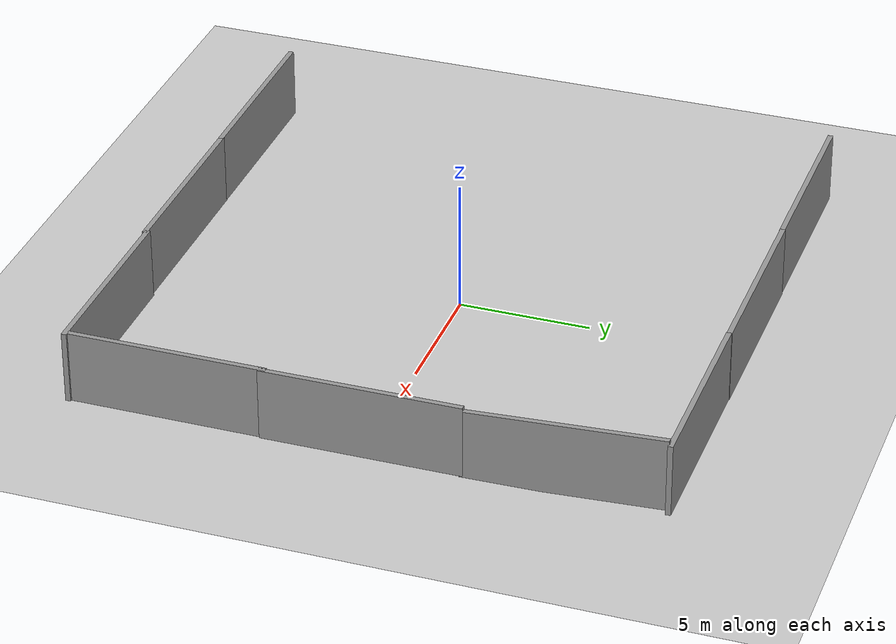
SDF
<sdf version="1.4">
 <world name="default">
  <light name="sun" type="directional">
   <pose>0 0 10 0 -0 0</pose>
   <diffuse>0.8 0.8 0.8 1</diffuse>
   <specular>0.2 0.2 0.2 1</specular>
   <attenuation>
    <range>1000</range>
    <constant>0.9</constant>
    <linear>0.01</linear>
    <quadratic>0.001</quadratic>
   </attenuation>
   <direction>-0.5 0.1 -0.9</direction>
  </light>
  <model name="ground_plane">
   <static>1</static>
   <link name="link">
    <collision name="collision">
     <geometry><plane><normal>0 0 1</normal><size>100 100</size></plane></geometry>
     <surface><friction><ode><mu>100</mu><mu2>50</mu2></ode></friction></surface>
    </collision>
    <visual name="visual">
     <cast_shadows>0</cast_shadows>
     <geometry><plane><normal>0 0 1</normal><size>100 100</size></plane></geometry>
     <material>
      <script><uri>file://media/materials/scripts/gazebo.material</uri><name>Gazebo/Grey</name></script>
     </material>
    </visual>
    <velocity_decay><linear>0</linear><angular>0</angular></velocity_decay>
   </link>
  </model>
  <physics type="ode">
   <max_step_size>0.001</max_step_size>
   <real_time_factor>1</real_time_factor>
   <real_time_update_rate>1000</real_time_update_rate>
   <gravity>0 0 -9.8</gravity>
  </physics>
  <scene><ambient>0.4 0.4 0.4 1</ambient><background>0.7 0.7 0.7 1</background><shadows>1</shadows></scene>
  <model name="grey_wall">
   <static>1</static>
   <link name="link">
    <pose>0 0 1.4 0 -0 0</pose>
    <collision name="collision"><geometry><box><size>7.5 0.2 2.8</size></box></geometry></collision>
    <visual name="visual">
     <cast_shadows>0</cast_shadows>
     <geometry><box><size>7.5 0.2 2.8</size></box></geometry>
     <material>
      <script>
       <uri>model://grey_wall/materials/scripts</uri>
       <uri>model://grey_wall/materials/textures</uri>
       <name>vrc/grey_wall</name>
      </script>
     </material>
    </visual>
    <velocity_decay><linear>0</linear><angular>0</angular></velocity_decay>
   </link>
   <pose>-8.23095 11.0014 0 0 -0 0</pose>
  </model>
  <model name="grey_wall_0">
   <static>1</static>
   <link name="link">
    <pose>0 0 1.4 0 -0 0</pose>
    <collision name="collision"><geometry><box><size>7.5 0.2 2.8</size></box></geometry></collision>
    <visual name="visual">
     <cast_shadows>0</cast_shadows>
     <geometry><box><size>7.5 0.2 2.8</size></box></geometry>
     <material>
      <script>
       <uri>model://grey_wall/materials/scripts</uri>
       <uri>model://grey_wall/materials/textures</uri>
       <name>vrc/grey_wall</name>
      </script>
     </material>
    </visual>
    <velocity_decay><linear>0</linear><angular>0</angular></velocity_decay>
   </link>
   <pose>-0.796756 11.0181 0 0 -0 0</pose>
  </model>
  <model name="grey_wall_1">
   <static>1</static>
   <link name="link">
    <pose>0 0 1.4 0 -0 0</pose>
    <collision name="collision"><geometry><box><size>7.5 0.2 2.8</size></box></geometry></collision>
    <visual name="visual">
     <cast_shadows>0</cast_shadows>
     <geometry><box><size>7.5 0.2 2.8</size></box></geometry>
     <material>
      <script>
       <uri>model://grey_wall/materials/scripts</uri>
       <uri>model://grey_wall/materials/textures</uri>
       <name>vrc/grey_wall</name>
      </script>
     </material>
    </visual>
    <velocity_decay><linear>0</linear><angular>0</angular></velocity_decay>
   </link>
   <pose>6.69405 10.9984 0 0 -0 0</pose>
  </model>
  <model name="grey_wall_2">
   <static>1</static>
   <link name="link">
    <pose>0 0 1.4 0 -0 0</pose>
    <collision name="collision"><geometry><box><size>7.5 0.2 2.8</size></box></geometry></collision>
    <visual name="visual">
     <cast_shadows>0</cast_shadows>
     <geometry><box><size>7.5 0.2 2.8</size></box></geometry>
     <material>
      <script>
       <uri>model://grey_wall/materials/scripts</uri>
       <uri>model://grey_wall/materials/textures</uri>
       <name>vrc/grey_wall</name>
      </script>
     </material>
    </visual>
    <velocity_decay><linear>0</linear><angular>0</angular></velocity_decay>
   </link>
   <pose>-7.95346 -11.1906 0 0 -0 0</pose>
  </model>
  <model name="grey_wall_3">
   <static>1</static>
   <link name="link">
    <pose>0 0 1.4 0 -0 0</pose>
    <collision name="collision"><geometry><box><size>7.5 0.2 2.8</size></box></geometry></collision>
    <visual name="visual">
     <cast_shadows>0</cast_shadows>
     <geometry><box><size>7.5 0.2 2.8</size></box></geometry>
     <material>
      <script>
       <uri>model://grey_wall/materials/scripts</uri>
       <uri>model://grey_wall/materials/textures</uri>
       <name>vrc/grey_wall</name>
      </script>
     </material>
    </visual>
    <velocity_decay><linear>0</linear><angular>0</angular></velocity_decay>
   </link>
   <pose>-0.524266 -11.1812 0 0 -0 0</pose>
  </model>
  <model name="grey_wall_4">
   <static>1</static>
   <link name="link">
    <pose>0 0 1.4 0 -0 0</pose>
    <collision name="collision"><geometry><box><size>7.5 0.2 2.8</size></box></geometry></collision>
    <visual name="visual">
     <cast_shadows>0</cast_shadows>
     <geometry><box><size>7.5 0.2 2.8</size></box></geometry>
     <material>
      <script>
       <uri>model://grey_wall/materials/scripts</uri>
       <uri>model://grey_wall/materials/textures</uri>
       <name>vrc/grey_wall</name>
      </script>
     </material>
    </visual>
    <velocity_decay><linear>0</linear><angular>0</angular></velocity_decay>
   </link>
   <pose>6.84897 -11.1085 0 0 -0 0</pose>
  </model>
  <model name="grey_wall_5">
   <static>1</static>
   <link name="link">
    <pose>0 0 1.4 0 -0 0</pose>
    <collision name="collision"><geometry><box><size>7.5 0.2 2.8</size></box></geometry></collision>
    <visual name="visual">
     <cast_shadows>0</cast_shadows>
     <geometry><box><size>7.5 0.2 2.8</size></box></geometry>
     <material>
      <script>
       <uri>model://grey_wall/materials/scripts</uri>
       <uri>model://grey_wall/materials/textures</uri>
       <name>vrc/grey_wall</name>
      </script>
     </material>
    </visual>
    <velocity_decay><linear>0</linear><angular>0</angular></velocity_decay>
   </link>
   <pose>10.4206 -7.28777 0 0 0 -1.57076</pose>
  </model>
  <model name="grey_wall_6">
   <static>1</static>
   <link name="link">
    <pose>0 0 1.4 0 -0 0</pose>
    <collision name="collision"><geometry><box><size>7.5 0.2 2.8</size></box></geometry></collision>
    <visual name="visual">
     <cast_shadows>0</cast_shadows>
     <geometry><box><size>7.5 0.2 2.8</size></box></geometry>
     <material>
      <script>
       <uri>model://grey_wall/materials/scripts</uri>
       <uri>model://grey_wall/materials/textures</uri>
       <name>vrc/grey_wall</name>
      </script>
     </material>
    </visual>
    <velocity_decay><linear>0</linear><angular>0</angular></velocity_decay>
   </link>
   <pose>10.4561 -0.077268 0 0 -0 1.57597</pose>
  </model>
  <model name="grey_wall_7">
   <static>1</static>
   <link name="link">
    <pose>0 0 1.4 0 -0 0</pose>
    <collision name="collision"><geometry><box><size>7.5 0.2 2.8</size></box></geometry></collision>
    <visual name="visual">
     <cast_shadows>0</cast_shadows>
     <geometry><box><size>7.5 0.2 2.8</size></box></geometry>
     <material>
      <script>
       <uri>model://grey_wall/materials/scripts</uri>
       <uri>model://grey_wall/materials/textures</uri>
       <name>vrc/grey_wall</name>
      </script>
     </material>
    </visual>
    <velocity_decay><linear>0</linear><angular>0</angular></velocity_decay>
   </link>
   <pose>10.3574 7.30013 1e-06 -0.001078 -0.039101 1.59118</pose>
  </model>
  <spherical_coordinates>
   <surface_model>EARTH_WGS84</surface_model>
   <latitude_deg>0</latitude_deg>
   <longitude_deg>0</longitude_deg>
   <elevation>0</elevation>
   <heading_deg>0</heading_deg>
  </spherical_coordinates>
 </world>
</sdf>
